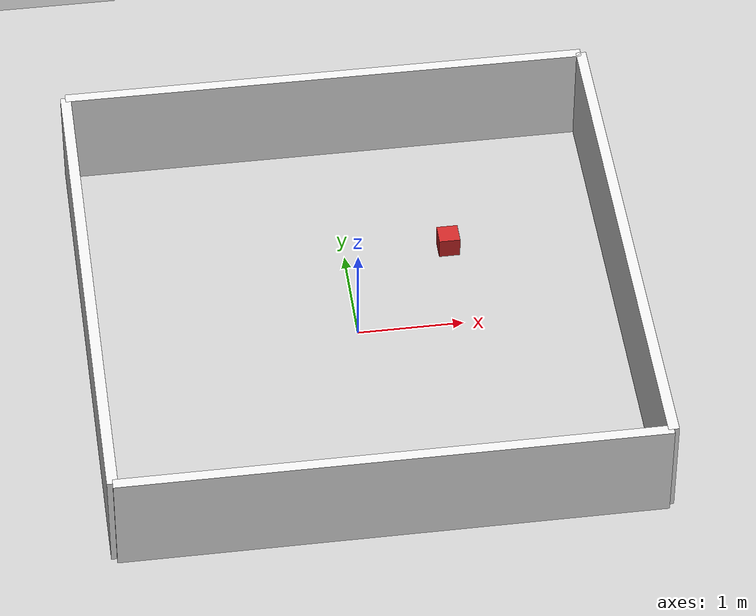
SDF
<sdf version="1.7">
 <world name="simple_room">
  <physics type="ode"><gravity>0 0 -9.8</gravity><real_time_update_rate>1000.0</real_time_update_rate></physics>
  <light name="sun" type="directional">
   <pose>0 0 10 0 0 0</pose>
   <diffuse>0.8 0.8 0.8 1</diffuse>
   <specular>0.2 0.2 0.2 1</specular>
   <attenuation>
    <range>1000</range>
    <constant>0.9</constant>
    <linear>0.01</linear>
    <quadratic>0.001</quadratic>
   </attenuation>
   <direction>-0.5 0.1 -0.9</direction>
  </light>
  <model name="ground_plane">
   <static>true</static>
   <link name="link">
    <collision name="collision">
     <geometry><plane><normal>0 0 1</normal><size>10 10</size></plane></geometry>
     <surface><friction><ode><mu>100</mu><mu2>50</mu2></ode></friction></surface>
    </collision>
    <visual name="visual">
     <cast_shadows>false</cast_shadows>
     <geometry><plane><normal>0 0 1</normal><size>10 10</size></plane></geometry>
     <material>
      <script><uri>file://media/materials/scripts/gazebo.material</uri><name>Gazebo/Grey</name></script>
     </material>
    </visual>
   </link>
  </model>
  <model name="north_wall">
   <static>true</static>
   <pose>0 2.5 0.5 0 0 0</pose>
   <link name="link">
    <collision name="collision"><geometry><box><size>5 0.1 1</size></box></geometry></collision>
    <visual name="visual">
     <geometry><box><size>5 0.1 1</size></box></geometry>
     <material><script><name>Gazebo/White</name></script></material>
    </visual>
   </link>
  </model>
  <model name="south_wall">
   <static>true</static>
   <pose>0 -2.5 0.5 0 0 0</pose>
   <link name="link">
    <collision name="collision"><geometry><box><size>5 0.1 1</size></box></geometry></collision>
    <visual name="visual">
     <geometry><box><size>5 0.1 1</size></box></geometry>
     <material><script><name>Gazebo/White</name></script></material>
    </visual>
   </link>
  </model>
  <model name="east_wall">
   <static>true</static>
   <pose>2.5 0 0.5 0 0 1.57</pose>
   <link name="link">
    <collision name="collision"><geometry><box><size>5 0.1 1</size></box></geometry></collision>
    <visual name="visual">
     <geometry><box><size>5 0.1 1</size></box></geometry>
     <material><script><name>Gazebo/White</name></script></material>
    </visual>
   </link>
  </model>
  <model name="west_wall">
   <static>true</static>
   <pose>-2.5 0 0.5 0 0 1.57</pose>
   <link name="link">
    <collision name="collision"><geometry><box><size>5 0.1 1</size></box></geometry></collision>
    <visual name="visual">
     <geometry><box><size>5 0.1 1</size></box></geometry>
     <material><script><name>Gazebo/White</name></script></material>
    </visual>
   </link>
  </model>
  <model name="toy">
   <static>true</static>
   <pose>1 1 0.1 0 0 0</pose>
   <link name="link">
    <collision name="collision"><geometry><box><size>0.2 0.2 0.2</size></box></geometry></collision>
    <visual name="visual">
     <geometry><box><size>0.2 0.2 0.2</size></box></geometry>
     <material><script><name>Gazebo/Red</name></script></material>
    </visual>
   </link>
  </model>
  <plugin name="gazebo_ros_init" filename="libgazebo_ros_init.so"/>
  <plugin name="gazebo_ros_factory" filename="libgazebo_ros_factory.so"/>
 </world>
</sdf>
